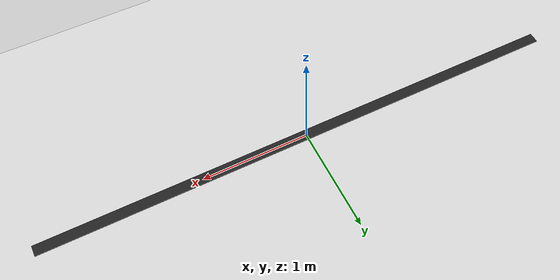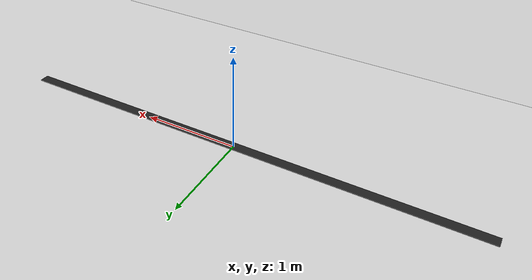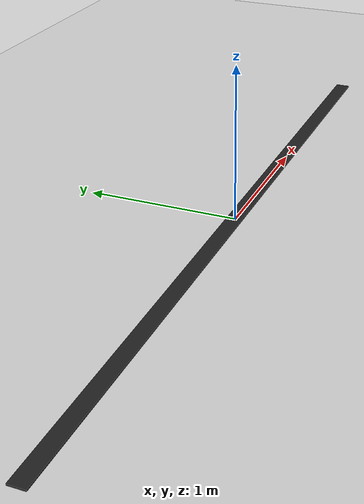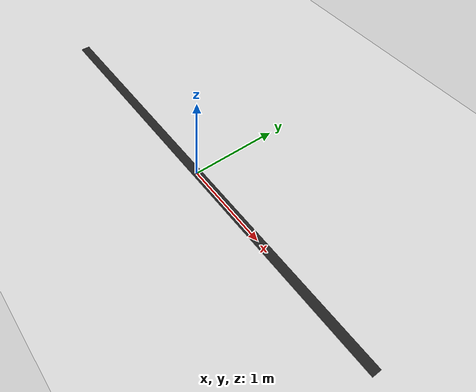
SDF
<?xml version="1.0" ?>
<sdf version="1.6">
  <world name="line_follower_world">

    <!-- Default ground plane -->
    <include>
      <uri>model://ground_plane</uri>
    </include>

    <!-- Sunlight for visibility -->
    <include>
      <uri>model://sun</uri>
    </include>

    <!-- Black Line -->
    <model name="black_line">
      <static>true</static>
      <pose>0 0 0.01 0 0 0</pose>
      <link name="link">
        <visual name="visual">
          <geometry>
            <box>
              <size>5 0.1 0.01</size> <!-- Length, Width, Height -->
            </box>
          </geometry>
          <material>
            <script>
              <uri>file://media/materials/scripts/gazebo.material</uri>
              <name>Gazebo/Black</name>
            </script>
          </material>
        </visual>
      </link>
    </model>

  </world>
</sdf>
